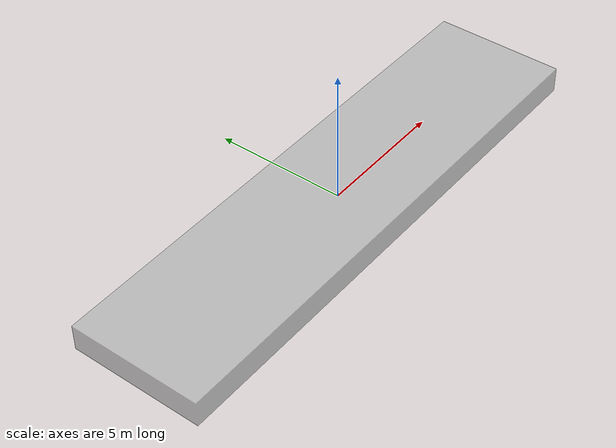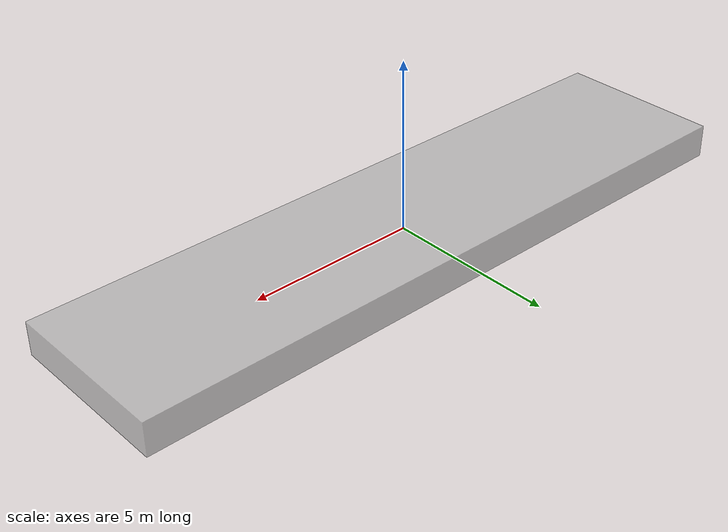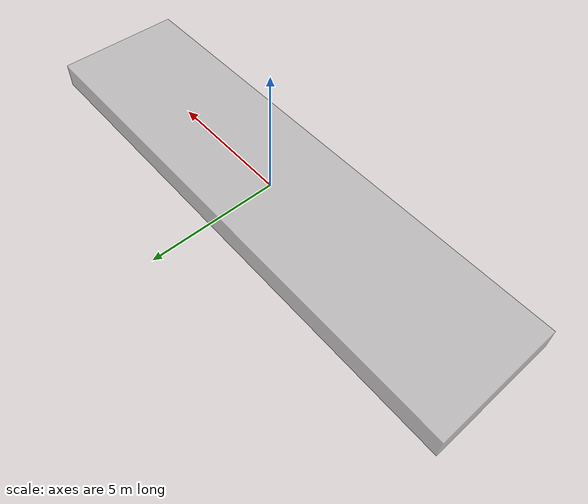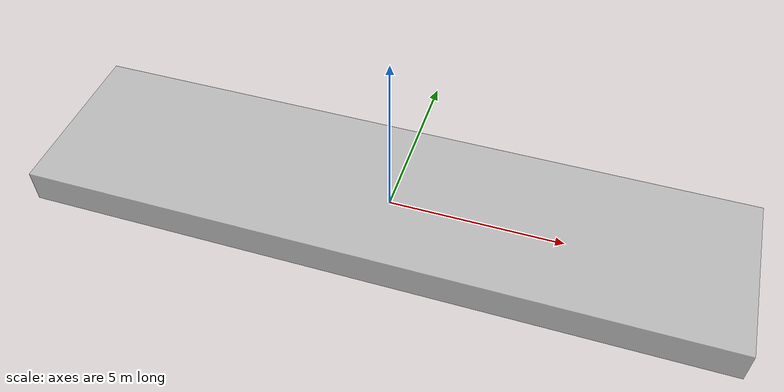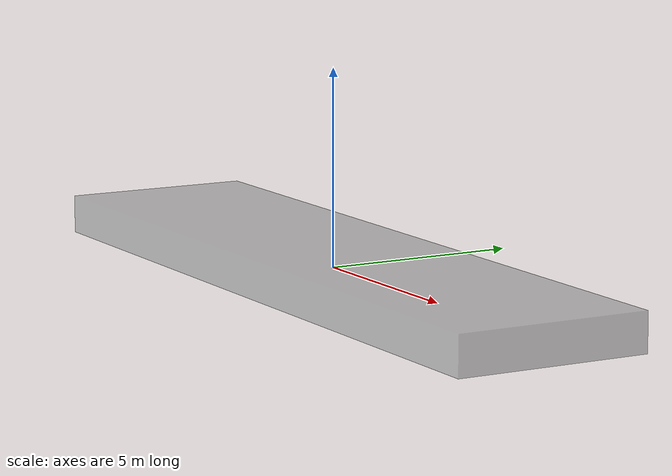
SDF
<?xml version="1.0"?>
<sdf version="1.2">
  <model name="stiff_ground">
    <static>true</static>
    <link name="link">
      <collision name="collision">
        <pose>0 0 0 0 0 0</pose>
        <geometry>
          <box>
            <size>20 5 1</size>
          </box>
        </geometry>

        <surface>
          <friction>
            <ode>
              <mu>10</mu>
              <mu2>10</mu2>
            </ode>
          </friction>
          <contact>
            <ode>
        <kp>8000.0</kp>  <kd>400.0</kd>  <!-- gain set 1 -->
        <!-- gain set 2 -->
          <!-- kd = 0.3 kp --> <!-- gain set 3 -->
            </ode>
          </contact>
        </surface>

      </collision>
      <visual name="visual_1">
	<transparency>0.3</transparency>
        <pose>0 0 0 0 0 0</pose>
        <cast_shadows>false</cast_shadows>
        <geometry>
          <box>
            <size>20 5 1</size>
          </box>
        </geometry>
        <material>
	  <lighting>true</lighting>
          <script>
            <uri>model://stiff_ground/materials/scripts</uri>
            <uri>model://stiff_ground/materials/textures</uri>
            <name>vrc/mud</name>
          </script>
        </material>
      </visual>
    </link>
  </model>cc
</sdf>
